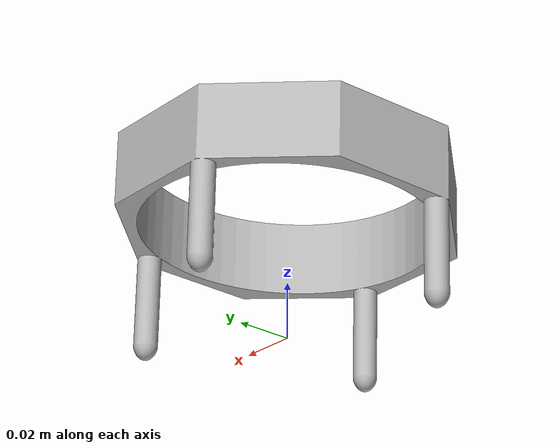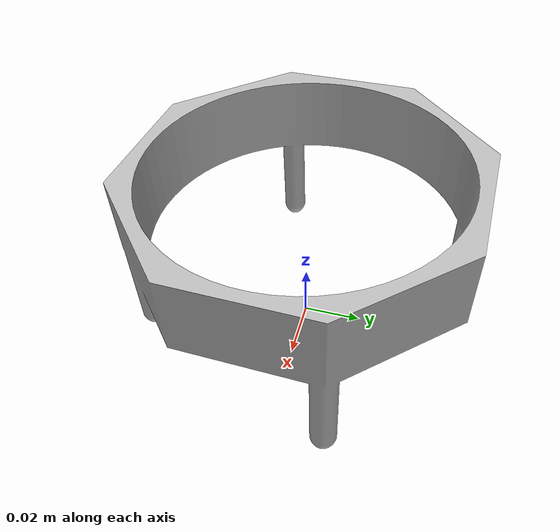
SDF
<?xml version="1.0" ?>
<sdf version="1.6">
  <model name="mount">
    <link name="mountlink">
      <collision name="coll">
        <pose>0 0 0 0 0 0</pose>
        <geometry>
	      <mesh>
              <uri>model://mount/meshes/mount_collision.dae</uri>
	      </mesh>
        </geometry>
      </collision>
      <inertial>
        <pose>0 0 0 0 0 0</pose>
        <inertia>
          <ixx>0.00055873</ixx>
          <ixy>0.0000</ixy>
          <ixz>0.00000</ixz>
          <iyy>0.00055873</iyy>
          <iyz>0.00000/iyz></iyz>
          <izz>0.0010789</izz>
        </inertia>
        <mass>0.028</mass>
      </inertial>
      <visual name="mountvisual">
        <pose>0 0 0 0 0 0</pose>
        <geometry>
          <mesh>
            <uri>model://mount/meshes/mount.dae</uri>
          </mesh>
        </geometry>
      </visual>
	  <plugin name="bumpSensor" filename="libbumpSensor.so"> </plugin>
	  <sensor name='contactSensor' type='contact'>
	    <contact>
		  <collision>coll</collision>
		</contact>
	  </sensor>
    </link>
  </model>
</sdf>
